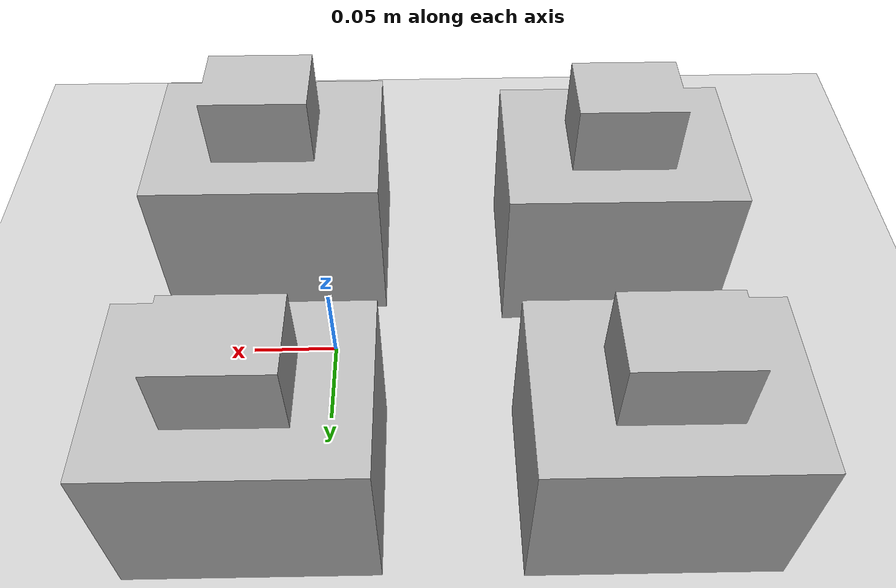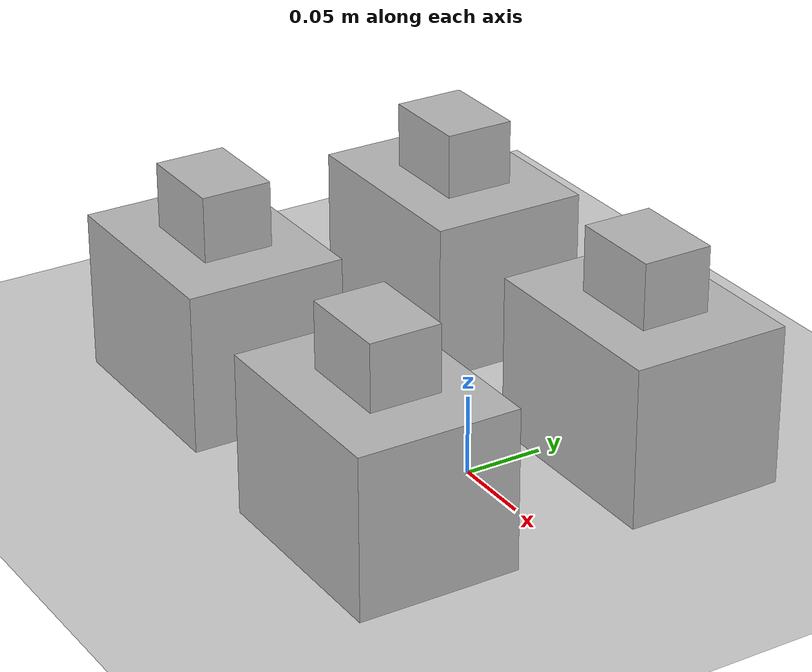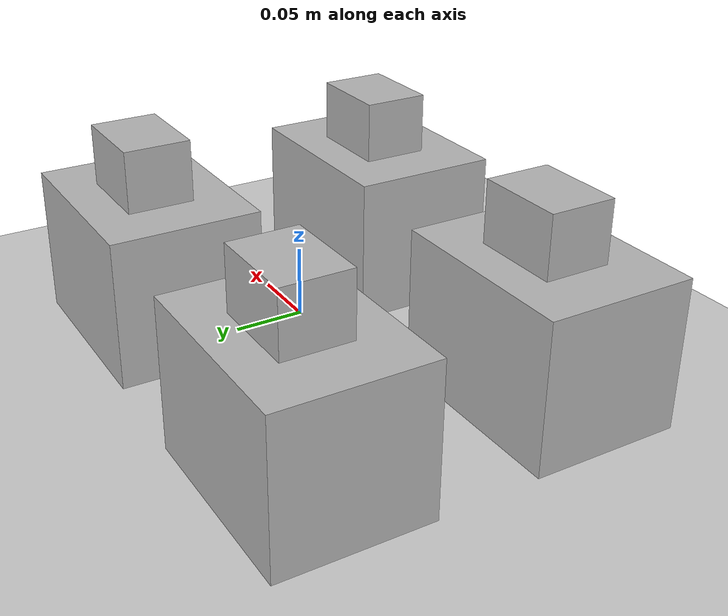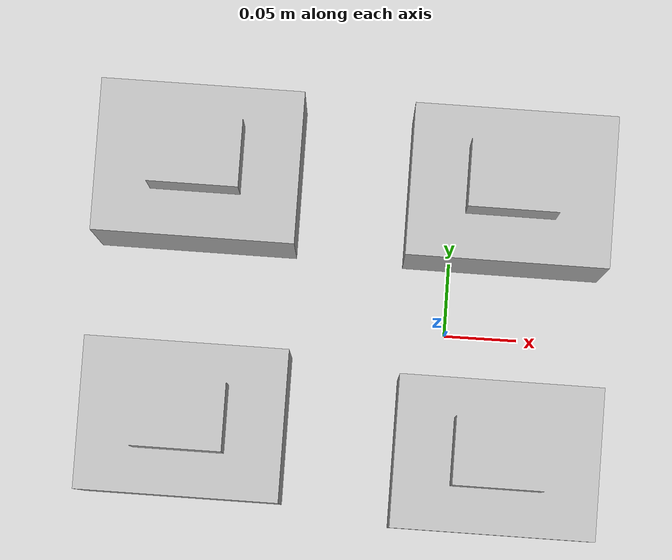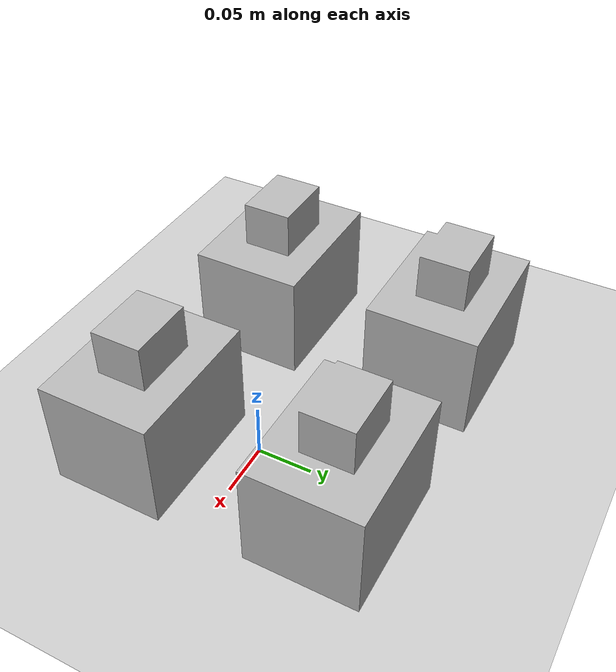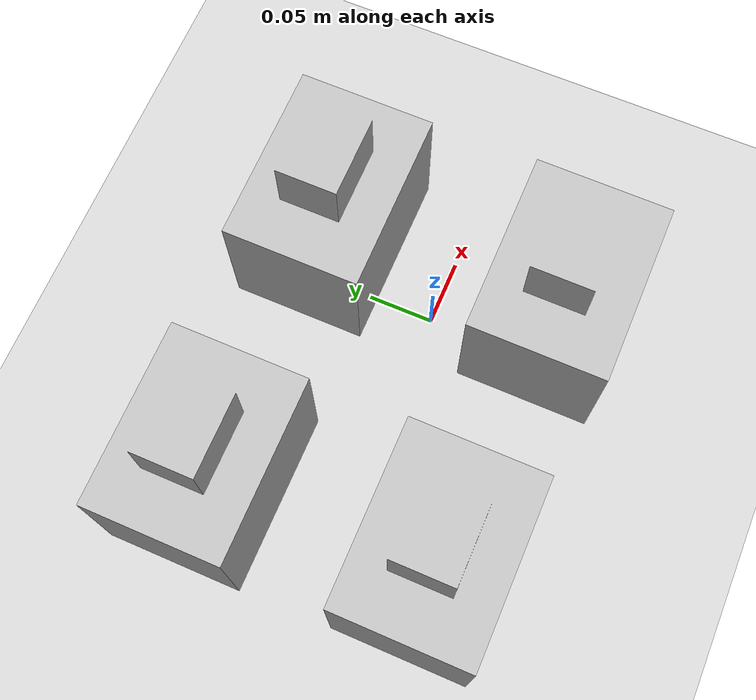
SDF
<sdf version="1.6">
 <world name="default">
  <light name="sun" type="directional">
   <pose>0 0 10 0 -0 0</pose>
   <diffuse>0.8 0.8 0.8 1</diffuse>
   <specular>0.2 0.2 0.2 1</specular>
   <attenuation>
    <range>1000</range>
    <constant>0.9</constant>
    <linear>0.01</linear>
    <quadratic>0.001</quadratic>
   </attenuation>
   <direction>-0.5 0.1 -0.9</direction>
  </light>
  <model name="ground_plane">
   <static>1</static>
   <link name="link">
    <collision name="collision">
     <geometry><plane><normal>0 0 1</normal><size>100 100</size></plane></geometry>
     <surface><friction><ode><mu>100</mu><mu2>50</mu2></ode></friction></surface>
    </collision>
    <visual name="visual">
     <cast_shadows>0</cast_shadows>
     <geometry><plane><normal>0 0 1</normal><size>100 100</size></plane></geometry>
     <material>
      <script><uri>file://media/materials/scripts/gazebo.material</uri><name>Gazebo/Grey</name></script>
     </material>
    </visual>
   </link>
  </model>
  <gravity>0 0 -9.8</gravity>
  <magnetic_field>6e-06 2.3e-05 -4.2e-05</magnetic_field>
  <atmosphere type="adiabatic"/>
  <physics name="default_physics" default="0" type="ode">
   <max_step_size>0.001</max_step_size>
   <real_time_factor>1</real_time_factor>
   <real_time_update_rate>1000</real_time_update_rate>
  </physics>
  <scene><ambient>0.4 0.4 0.4 1</ambient><background>0.7 0.7 0.7 1</background><shadows>1</shadows></scene>
  <audio><device>default</device></audio>
  <spherical_coordinates>
   <surface_model>EARTH_WGS84</surface_model>
   <latitude_deg>0</latitude_deg>
   <longitude_deg>0</longitude_deg>
   <elevation>0</elevation>
   <heading_deg>0</heading_deg>
  </spherical_coordinates>
  <model name="cube_20k_clone">
   <link name="link">
    <collision name="collision">
     <geometry><mesh><uri>model://cube_20k/meshes/cube_20k.stl</uri><scale>0.03 0.04 0.03</scale></mesh></geometry>
    </collision>
    <visual name="visual">
     <geometry><mesh><uri>model://cube_20k/meshes/cube_20k.stl</uri><scale>0.03 0.04 0.03</scale></mesh></geometry>
    </visual>
    <inertial>
     <inertia><ixx>1</ixx><ixy>0</ixy><ixz>0</ixz><iyy>1</iyy><iyz>0</iyz><izz>1</izz></inertia>
     <mass>1</mass>
    </inertial>
   </link>
   <pose>0.035667 0.095479 0.050654 -1e-06 -0 -1.57605</pose>
  </model>
  <model name="cube_20k_clone_clone">
   <link name="link">
    <collision name="collision">
     <geometry><mesh><uri>model://cube_20k/meshes/cube_20k.stl</uri><scale>0.03 0.04 0.03</scale></mesh></geometry>
    </collision>
    <visual name="visual">
     <geometry><mesh><uri>model://cube_20k/meshes/cube_20k.stl</uri><scale>0.03 0.04 0.03</scale></mesh></geometry>
    </visual>
    <inertial>
     <inertia><ixx>1</ixx><ixy>0</ixy><ixz>0</ixz><iyy>1</iyy><iyz>0</iyz><izz>1</izz></inertia>
     <mass>1</mass>
    </inertial>
   </link>
   <pose>-0.172996 0.098227 0.050654 -1e-06 -0 -1.57608</pose>
  </model>
  <model name="cube_20k_clone_clone_clone">
   <link name="link">
    <collision name="collision">
     <geometry><mesh><uri>model://cube_20k/meshes/cube_20k.stl</uri><scale>0.03 0.04 0.03</scale></mesh></geometry>
    </collision>
    <visual name="visual">
     <geometry><mesh><uri>model://cube_20k/meshes/cube_20k.stl</uri><scale>0.03 0.04 0.03</scale></mesh></geometry>
    </visual>
    <inertial>
     <inertia><ixx>1</ixx><ixy>0</ixy><ixz>0</ixz><iyy>1</iyy><iyz>0</iyz><izz>1</izz></inertia>
     <mass>1</mass>
    </inertial>
   </link>
   <pose>-0.171957 -0.072768 0.050654 -1e-06 -0 -1.57608</pose>
  </model>
  <model name="cube_20k_clone_clone_clone_clone">
   <link name="link">
    <collision name="collision">
     <geometry><mesh><uri>model://cube_20k/meshes/cube_20k.stl</uri><scale>0.03 0.04 0.03</scale></mesh></geometry>
    </collision>
    <visual name="visual">
     <geometry><mesh><uri>model://cube_20k/meshes/cube_20k.stl</uri><scale>0.03 0.04 0.03</scale></mesh></geometry>
    </visual>
    <inertial>
     <inertia><ixx>1</ixx><ixy>0</ixy><ixz>0</ixz><iyy>1</iyy><iyz>0</iyz><izz>1</izz></inertia>
     <mass>1</mass>
    </inertial>
   </link>
   <pose>0.036689 -0.084419 0.050654 -1e-06 -0 -1.57608</pose>
  </model>
 </world>
</sdf>
